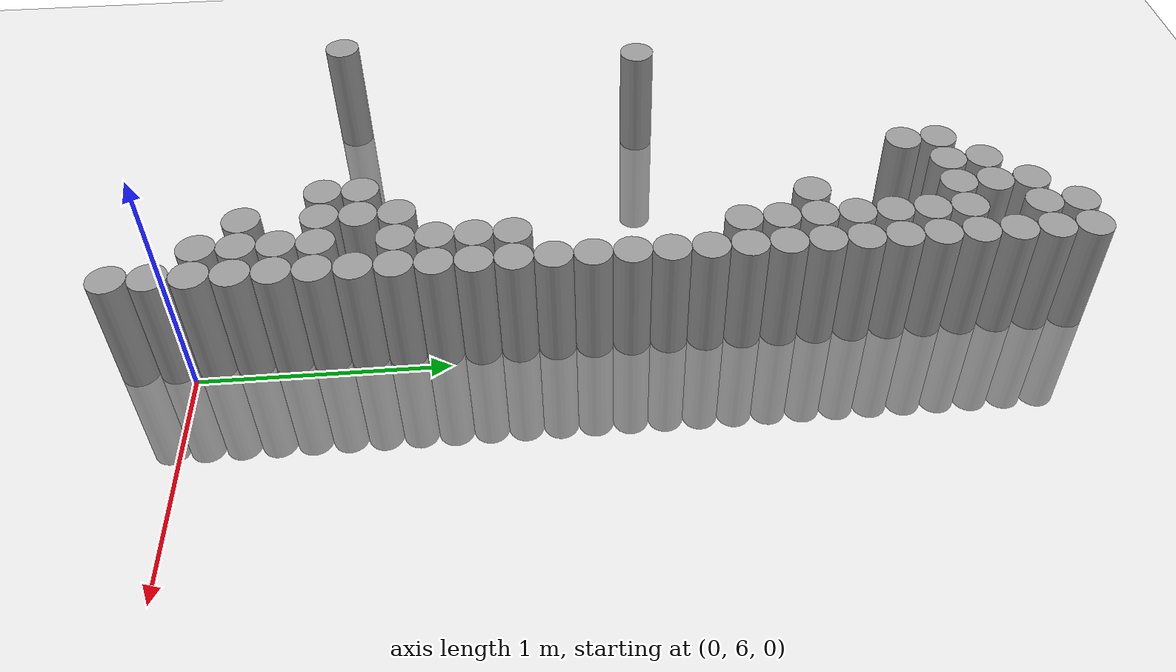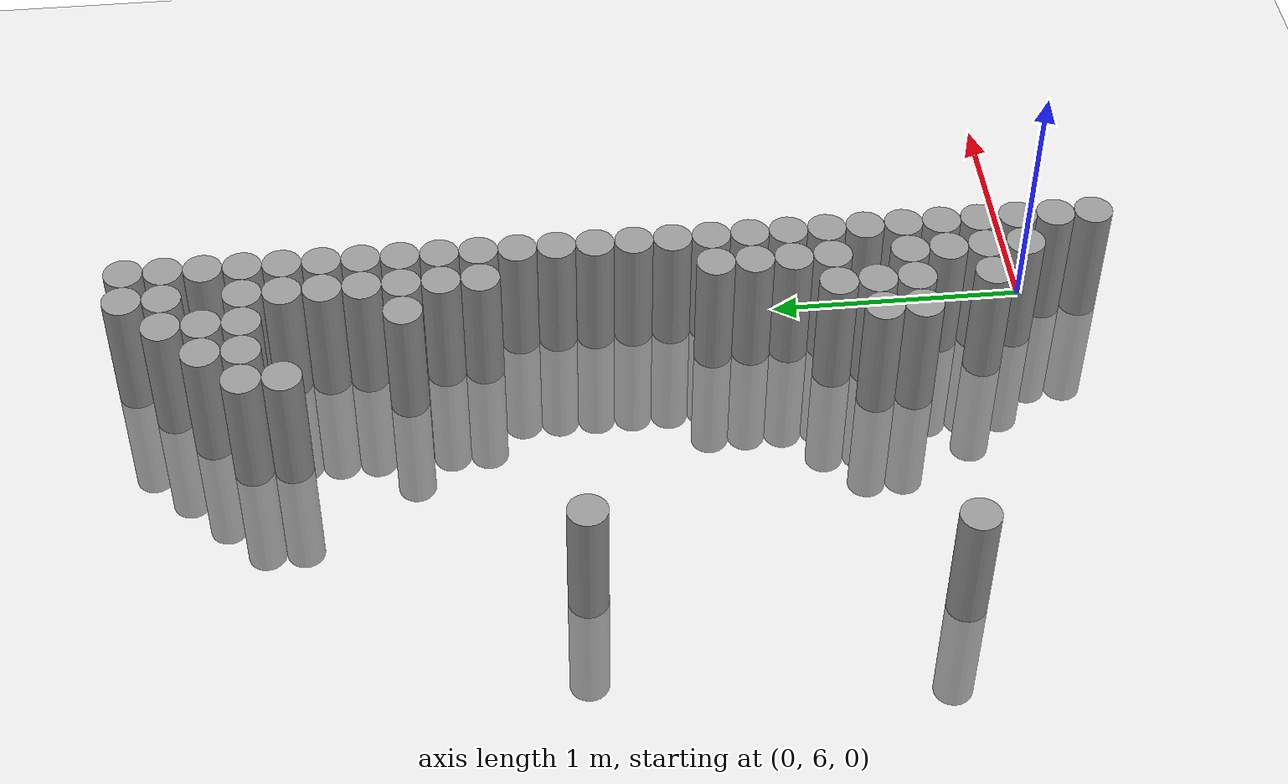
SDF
<sdf version="1.6">
 <world name="default">
  <model name="ground_plane">
   <static>1</static>
   <static>1</static>
   <link name="link">
    <collision name="collision">
     <geometry><plane><normal>0 0 1</normal><size>100 100</size></plane></geometry>
     <surface><friction><ode><mu>100</mu><mu2>50</mu2></ode></friction></surface>
    </collision>
    <visual name="visual">
     <cast_shadows>0</cast_shadows>
     <geometry><plane><normal>0 0 1</normal><size>100 100</size></plane></geometry>
     <material>
      <script><uri>file://media/materials/scripts/gazebo.material</uri><name>Gazebo/Grey</name></script>
     </material>
    </visual>
   </link>
  </model>
  <model name="unit_cylinder_225">
   <static>1</static>
   <pose>-1.575000 6.525000 0.000000 0.000000 0.000000 0.000000</pose>
   <link name="link">
    <inertial>
     <mass>1</mass>
     <inertia><ixx>0.145833</ixx><ixy>0</ixy><ixz>0</ixz><iyy>0.145833</iyy><iyz>0</iyz><izz>0.125</izz></inertia>
    </inertial>
    <collision name="collision">
     <geometry><cylinder><radius>0.075000</radius><length>1</length></cylinder></geometry>
    </collision>
    <visual name="visual">
     <geometry><cylinder><radius>0.075000</radius><length>1</length></cylinder></geometry>
     <material>
      <script><name>Gazebo/Grey</name><uri>file://media/materials/scripts/gazebo.material</uri></script>
     </material>
    </visual>
   </link>
  </model>
  <model name="unit_cylinder_226">
   <static>1</static>
   <pose>-1.425000 7.875000 0.000000 0.000000 0.000000 0.000000</pose>
   <link name="link">
    <inertial>
     <mass>1</mass>
     <inertia><ixx>0.145833</ixx><ixy>0</ixy><ixz>0</ixz><iyy>0.145833</iyy><iyz>0</iyz><izz>0.125</izz></inertia>
    </inertial>
    <collision name="collision">
     <geometry><cylinder><radius>0.075000</radius><length>1</length></cylinder></geometry>
    </collision>
    <visual name="visual">
     <geometry><cylinder><radius>0.075000</radius><length>1</length></cylinder></geometry>
     <material>
      <script><name>Gazebo/Grey</name><uri>file://media/materials/scripts/gazebo.material</uri></script>
     </material>
    </visual>
   </link>
  </model>
  <model name="unit_cylinder_227">
   <static>1</static>
   <pose>-0.675000 8.925000 0.000000 0.000000 0.000000 0.000000</pose>
   <link name="link">
    <inertial>
     <mass>1</mass>
     <inertia><ixx>0.145833</ixx><ixy>0</ixy><ixz>0</ixz><iyy>0.145833</iyy><iyz>0</iyz><izz>0.125</izz></inertia>
    </inertial>
    <collision name="collision">
     <geometry><cylinder><radius>0.075000</radius><length>1</length></cylinder></geometry>
    </collision>
    <visual name="visual">
     <geometry><cylinder><radius>0.075000</radius><length>1</length></cylinder></geometry>
     <material>
      <script><name>Gazebo/Grey</name><uri>file://media/materials/scripts/gazebo.material</uri></script>
     </material>
    </visual>
   </link>
  </model>
  <model name="unit_cylinder_228">
   <static>1</static>
   <pose>-0.675000 9.075000 0.000000 0.000000 0.000000 0.000000</pose>
   <link name="link">
    <inertial>
     <mass>1</mass>
     <inertia><ixx>0.145833</ixx><ixy>0</ixy><ixz>0</ixz><iyy>0.145833</iyy><iyz>0</iyz><izz>0.125</izz></inertia>
    </inertial>
    <collision name="collision">
     <geometry><cylinder><radius>0.075000</radius><length>1</length></cylinder></geometry>
    </collision>
    <visual name="visual">
     <geometry><cylinder><radius>0.075000</radius><length>1</length></cylinder></geometry>
     <material>
      <script><name>Gazebo/Grey</name><uri>file://media/materials/scripts/gazebo.material</uri></script>
     </material>
    </visual>
   </link>
  </model>
  <model name="unit_cylinder_229">
   <static>1</static>
   <pose>-0.525000 6.525000 0.000000 0.000000 0.000000 0.000000</pose>
   <link name="link">
    <inertial>
     <mass>1</mass>
     <inertia><ixx>0.145833</ixx><ixy>0</ixy><ixz>0</ixz><iyy>0.145833</iyy><iyz>0</iyz><izz>0.125</izz></inertia>
    </inertial>
    <collision name="collision">
     <geometry><cylinder><radius>0.075000</radius><length>1</length></cylinder></geometry>
    </collision>
    <visual name="visual">
     <geometry><cylinder><radius>0.075000</radius><length>1</length></cylinder></geometry>
     <material>
      <script><name>Gazebo/Grey</name><uri>file://media/materials/scripts/gazebo.material</uri></script>
     </material>
    </visual>
   </link>
  </model>
  <model name="unit_cylinder_230">
   <static>1</static>
   <pose>-0.525000 6.675000 0.000000 0.000000 0.000000 0.000000</pose>
   <link name="link">
    <inertial>
     <mass>1</mass>
     <inertia><ixx>0.145833</ixx><ixy>0</ixy><ixz>0</ixz><iyy>0.145833</iyy><iyz>0</iyz><izz>0.125</izz></inertia>
    </inertial>
    <collision name="collision">
     <geometry><cylinder><radius>0.075000</radius><length>1</length></cylinder></geometry>
    </collision>
    <visual name="visual">
     <geometry><cylinder><radius>0.075000</radius><length>1</length></cylinder></geometry>
     <material>
      <script><name>Gazebo/Grey</name><uri>file://media/materials/scripts/gazebo.material</uri></script>
     </material>
    </visual>
   </link>
  </model>
  <model name="unit_cylinder_231">
   <static>1</static>
   <pose>-0.525000 9.075000 0.000000 0.000000 0.000000 0.000000</pose>
   <link name="link">
    <inertial>
     <mass>1</mass>
     <inertia><ixx>0.145833</ixx><ixy>0</ixy><ixz>0</ixz><iyy>0.145833</iyy><iyz>0</iyz><izz>0.125</izz></inertia>
    </inertial>
    <collision name="collision">
     <geometry><cylinder><radius>0.075000</radius><length>1</length></cylinder></geometry>
    </collision>
    <visual name="visual">
     <geometry><cylinder><radius>0.075000</radius><length>1</length></cylinder></geometry>
     <material>
      <script><name>Gazebo/Grey</name><uri>file://media/materials/scripts/gazebo.material</uri></script>
     </material>
    </visual>
   </link>
  </model>
  <model name="unit_cylinder_232">
   <static>1</static>
   <pose>-0.525000 9.225000 0.000000 0.000000 0.000000 0.000000</pose>
   <link name="link">
    <inertial>
     <mass>1</mass>
     <inertia><ixx>0.145833</ixx><ixy>0</ixy><ixz>0</ixz><iyy>0.145833</iyy><iyz>0</iyz><izz>0.125</izz></inertia>
    </inertial>
    <collision name="collision">
     <geometry><cylinder><radius>0.075000</radius><length>1</length></cylinder></geometry>
    </collision>
    <visual name="visual">
     <geometry><cylinder><radius>0.075000</radius><length>1</length></cylinder></geometry>
     <material>
      <script><name>Gazebo/Grey</name><uri>file://media/materials/scripts/gazebo.material</uri></script>
     </material>
    </visual>
   </link>
  </model>
  <model name="unit_cylinder_234">
   <static>1</static>
   <pose>-0.375000 6.225000 0.000000 0.000000 0.000000 0.000000</pose>
   <link name="link">
    <inertial>
     <mass>1</mass>
     <inertia><ixx>0.145833</ixx><ixy>0</ixy><ixz>0</ixz><iyy>0.145833</iyy><iyz>0</iyz><izz>0.125</izz></inertia>
    </inertial>
    <collision name="collision">
     <geometry><cylinder><radius>0.075000</radius><length>1</length></cylinder></geometry>
    </collision>
    <visual name="visual">
     <geometry><cylinder><radius>0.075000</radius><length>1</length></cylinder></geometry>
     <material>
      <script><name>Gazebo/Grey</name><uri>file://media/materials/scripts/gazebo.material</uri></script>
     </material>
    </visual>
   </link>
  </model>
  <model name="unit_cylinder_235">
   <static>1</static>
   <pose>-0.375000 6.525000 0.000000 0.000000 0.000000 0.000000</pose>
   <link name="link">
    <inertial>
     <mass>1</mass>
     <inertia><ixx>0.145833</ixx><ixy>0</ixy><ixz>0</ixz><iyy>0.145833</iyy><iyz>0</iyz><izz>0.125</izz></inertia>
    </inertial>
    <collision name="collision">
     <geometry><cylinder><radius>0.075000</radius><length>1</length></cylinder></geometry>
    </collision>
    <visual name="visual">
     <geometry><cylinder><radius>0.075000</radius><length>1</length></cylinder></geometry>
     <material>
      <script><name>Gazebo/Grey</name><uri>file://media/materials/scripts/gazebo.material</uri></script>
     </material>
    </visual>
   </link>
  </model>
  <model name="unit_cylinder_236">
   <static>1</static>
   <pose>-0.375000 6.675000 0.000000 0.000000 0.000000 0.000000</pose>
   <link name="link">
    <inertial>
     <mass>1</mass>
     <inertia><ixx>0.145833</ixx><ixy>0</ixy><ixz>0</ixz><iyy>0.145833</iyy><iyz>0</iyz><izz>0.125</izz></inertia>
    </inertial>
    <collision name="collision">
     <geometry><cylinder><radius>0.075000</radius><length>1</length></cylinder></geometry>
    </collision>
    <visual name="visual">
     <geometry><cylinder><radius>0.075000</radius><length>1</length></cylinder></geometry>
     <material>
      <script><name>Gazebo/Grey</name><uri>file://media/materials/scripts/gazebo.material</uri></script>
     </material>
    </visual>
   </link>
  </model>
  <model name="unit_cylinder_237">
   <static>1</static>
   <pose>-0.375000 6.825000 0.000000 0.000000 0.000000 0.000000</pose>
   <link name="link">
    <inertial>
     <mass>1</mass>
     <inertia><ixx>0.145833</ixx><ixy>0</ixy><ixz>0</ixz><iyy>0.145833</iyy><iyz>0</iyz><izz>0.125</izz></inertia>
    </inertial>
    <collision name="collision">
     <geometry><cylinder><radius>0.075000</radius><length>1</length></cylinder></geometry>
    </collision>
    <visual name="visual">
     <geometry><cylinder><radius>0.075000</radius><length>1</length></cylinder></geometry>
     <material>
      <script><name>Gazebo/Grey</name><uri>file://media/materials/scripts/gazebo.material</uri></script>
     </material>
    </visual>
   </link>
  </model>
  <model name="unit_cylinder_238">
   <static>1</static>
   <pose>-0.375000 8.475000 0.000000 0.000000 0.000000 0.000000</pose>
   <link name="link">
    <inertial>
     <mass>1</mass>
     <inertia><ixx>0.145833</ixx><ixy>0</ixy><ixz>0</ixz><iyy>0.145833</iyy><iyz>0</iyz><izz>0.125</izz></inertia>
    </inertial>
    <collision name="collision">
     <geometry><cylinder><radius>0.075000</radius><length>1</length></cylinder></geometry>
    </collision>
    <visual name="visual">
     <geometry><cylinder><radius>0.075000</radius><length>1</length></cylinder></geometry>
     <material>
      <script><name>Gazebo/Grey</name><uri>file://media/materials/scripts/gazebo.material</uri></script>
     </material>
    </visual>
   </link>
  </model>
  <model name="unit_cylinder_239">
   <static>1</static>
   <pose>-0.375000 9.075000 0.000000 0.000000 0.000000 0.000000</pose>
   <link name="link">
    <inertial>
     <mass>1</mass>
     <inertia><ixx>0.145833</ixx><ixy>0</ixy><ixz>0</ixz><iyy>0.145833</iyy><iyz>0</iyz><izz>0.125</izz></inertia>
    </inertial>
    <collision name="collision">
     <geometry><cylinder><radius>0.075000</radius><length>1</length></cylinder></geometry>
    </collision>
    <visual name="visual">
     <geometry><cylinder><radius>0.075000</radius><length>1</length></cylinder></geometry>
     <material>
      <script><name>Gazebo/Grey</name><uri>file://media/materials/scripts/gazebo.material</uri></script>
     </material>
    </visual>
   </link>
  </model>
  <model name="unit_cylinder_240">
   <static>1</static>
   <pose>-0.375000 9.225000 0.000000 0.000000 0.000000 0.000000</pose>
   <link name="link">
    <inertial>
     <mass>1</mass>
     <inertia><ixx>0.145833</ixx><ixy>0</ixy><ixz>0</ixz><iyy>0.145833</iyy><iyz>0</iyz><izz>0.125</izz></inertia>
    </inertial>
    <collision name="collision">
     <geometry><cylinder><radius>0.075000</radius><length>1</length></cylinder></geometry>
    </collision>
    <visual name="visual">
     <geometry><cylinder><radius>0.075000</radius><length>1</length></cylinder></geometry>
     <material>
      <script><name>Gazebo/Grey</name><uri>file://media/materials/scripts/gazebo.material</uri></script>
     </material>
    </visual>
   </link>
  </model>
  <model name="unit_cylinder_241">
   <static>1</static>
   <pose>-0.375000 9.375000 0.000000 0.000000 0.000000 0.000000</pose>
   <link name="link">
    <inertial>
     <mass>1</mass>
     <inertia><ixx>0.145833</ixx><ixy>0</ixy><ixz>0</ixz><iyy>0.145833</iyy><iyz>0</iyz><izz>0.125</izz></inertia>
    </inertial>
    <collision name="collision">
     <geometry><cylinder><radius>0.075000</radius><length>1</length></cylinder></geometry>
    </collision>
    <visual name="visual">
     <geometry><cylinder><radius>0.075000</radius><length>1</length></cylinder></geometry>
     <material>
      <script><name>Gazebo/Grey</name><uri>file://media/materials/scripts/gazebo.material</uri></script>
     </material>
    </visual>
   </link>
  </model>
  <model name="unit_cylinder_245">
   <static>1</static>
   <pose>-0.225000 6.075000 0.000000 0.000000 0.000000 0.000000</pose>
   <link name="link">
    <inertial>
     <mass>1</mass>
     <inertia><ixx>0.145833</ixx><ixy>0</ixy><ixz>0</ixz><iyy>0.145833</iyy><iyz>0</iyz><izz>0.125</izz></inertia>
    </inertial>
    <collision name="collision">
     <geometry><cylinder><radius>0.075000</radius><length>1</length></cylinder></geometry>
    </collision>
    <visual name="visual">
     <geometry><cylinder><radius>0.075000</radius><length>1</length></cylinder></geometry>
     <material>
      <script><name>Gazebo/Grey</name><uri>file://media/materials/scripts/gazebo.material</uri></script>
     </material>
    </visual>
   </link>
  </model>
  <model name="unit_cylinder_246">
   <static>1</static>
   <pose>-0.225000 6.225000 0.000000 0.000000 0.000000 0.000000</pose>
   <link name="link">
    <inertial>
     <mass>1</mass>
     <inertia><ixx>0.145833</ixx><ixy>0</ixy><ixz>0</ixz><iyy>0.145833</iyy><iyz>0</iyz><izz>0.125</izz></inertia>
    </inertial>
    <collision name="collision">
     <geometry><cylinder><radius>0.075000</radius><length>1</length></cylinder></geometry>
    </collision>
    <visual name="visual">
     <geometry><cylinder><radius>0.075000</radius><length>1</length></cylinder></geometry>
     <material>
      <script><name>Gazebo/Grey</name><uri>file://media/materials/scripts/gazebo.material</uri></script>
     </material>
    </visual>
   </link>
  </model>
  <model name="unit_cylinder_247">
   <static>1</static>
   <pose>-0.225000 6.375000 0.000000 0.000000 0.000000 0.000000</pose>
   <link name="link">
    <inertial>
     <mass>1</mass>
     <inertia><ixx>0.145833</ixx><ixy>0</ixy><ixz>0</ixz><iyy>0.145833</iyy><iyz>0</iyz><izz>0.125</izz></inertia>
    </inertial>
    <collision name="collision">
     <geometry><cylinder><radius>0.075000</radius><length>1</length></cylinder></geometry>
    </collision>
    <visual name="visual">
     <geometry><cylinder><radius>0.075000</radius><length>1</length></cylinder></geometry>
     <material>
      <script><name>Gazebo/Grey</name><uri>file://media/materials/scripts/gazebo.material</uri></script>
     </material>
    </visual>
   </link>
  </model>
  <model name="unit_cylinder_248">
   <static>1</static>
   <pose>-0.225000 6.525000 0.000000 0.000000 0.000000 0.000000</pose>
   <link name="link">
    <inertial>
     <mass>1</mass>
     <inertia><ixx>0.145833</ixx><ixy>0</ixy><ixz>0</ixz><iyy>0.145833</iyy><iyz>0</iyz><izz>0.125</izz></inertia>
    </inertial>
    <collision name="collision">
     <geometry><cylinder><radius>0.075000</radius><length>1</length></cylinder></geometry>
    </collision>
    <visual name="visual">
     <geometry><cylinder><radius>0.075000</radius><length>1</length></cylinder></geometry>
     <material>
      <script><name>Gazebo/Grey</name><uri>file://media/materials/scripts/gazebo.material</uri></script>
     </material>
    </visual>
   </link>
  </model>
  <model name="unit_cylinder_249">
   <static>1</static>
   <pose>-0.225000 6.825000 0.000000 0.000000 0.000000 0.000000</pose>
   <link name="link">
    <inertial>
     <mass>1</mass>
     <inertia><ixx>0.145833</ixx><ixy>0</ixy><ixz>0</ixz><iyy>0.145833</iyy><iyz>0</iyz><izz>0.125</izz></inertia>
    </inertial>
    <collision name="collision">
     <geometry><cylinder><radius>0.075000</radius><length>1</length></cylinder></geometry>
    </collision>
    <visual name="visual">
     <geometry><cylinder><radius>0.075000</radius><length>1</length></cylinder></geometry>
     <material>
      <script><name>Gazebo/Grey</name><uri>file://media/materials/scripts/gazebo.material</uri></script>
     </material>
    </visual>
   </link>
  </model>
  <model name="unit_cylinder_250">
   <static>1</static>
   <pose>-0.225000 6.975000 0.000000 0.000000 0.000000 0.000000</pose>
   <link name="link">
    <inertial>
     <mass>1</mass>
     <inertia><ixx>0.145833</ixx><ixy>0</ixy><ixz>0</ixz><iyy>0.145833</iyy><iyz>0</iyz><izz>0.125</izz></inertia>
    </inertial>
    <collision name="collision">
     <geometry><cylinder><radius>0.075000</radius><length>1</length></cylinder></geometry>
    </collision>
    <visual name="visual">
     <geometry><cylinder><radius>0.075000</radius><length>1</length></cylinder></geometry>
     <material>
      <script><name>Gazebo/Grey</name><uri>file://media/materials/scripts/gazebo.material</uri></script>
     </material>
    </visual>
   </link>
  </model>
  <model name="unit_cylinder_251">
   <static>1</static>
   <pose>-0.225000 7.125000 0.000000 0.000000 0.000000 0.000000</pose>
   <link name="link">
    <inertial>
     <mass>1</mass>
     <inertia><ixx>0.145833</ixx><ixy>0</ixy><ixz>0</ixz><iyy>0.145833</iyy><iyz>0</iyz><izz>0.125</izz></inertia>
    </inertial>
    <collision name="collision">
     <geometry><cylinder><radius>0.075000</radius><length>1</length></cylinder></geometry>
    </collision>
    <visual name="visual">
     <geometry><cylinder><radius>0.075000</radius><length>1</length></cylinder></geometry>
     <material>
      <script><name>Gazebo/Grey</name><uri>file://media/materials/scripts/gazebo.material</uri></script>
     </material>
    </visual>
   </link>
  </model>
  <model name="unit_cylinder_252">
   <static>1</static>
   <pose>-0.225000 7.275000 0.000000 0.000000 0.000000 0.000000</pose>
   <link name="link">
    <inertial>
     <mass>1</mass>
     <inertia><ixx>0.145833</ixx><ixy>0</ixy><ixz>0</ixz><iyy>0.145833</iyy><iyz>0</iyz><izz>0.125</izz></inertia>
    </inertial>
    <collision name="collision">
     <geometry><cylinder><radius>0.075000</radius><length>1</length></cylinder></geometry>
    </collision>
    <visual name="visual">
     <geometry><cylinder><radius>0.075000</radius><length>1</length></cylinder></geometry>
     <material>
      <script><name>Gazebo/Grey</name><uri>file://media/materials/scripts/gazebo.material</uri></script>
     </material>
    </visual>
   </link>
  </model>
  <model name="unit_cylinder_253">
   <static>1</static>
   <pose>-0.225000 8.175000 0.000000 0.000000 0.000000 0.000000</pose>
   <link name="link">
    <inertial>
     <mass>1</mass>
     <inertia><ixx>0.145833</ixx><ixy>0</ixy><ixz>0</ixz><iyy>0.145833</iyy><iyz>0</iyz><izz>0.125</izz></inertia>
    </inertial>
    <collision name="collision">
     <geometry><cylinder><radius>0.075000</radius><length>1</length></cylinder></geometry>
    </collision>
    <visual name="visual">
     <geometry><cylinder><radius>0.075000</radius><length>1</length></cylinder></geometry>
     <material>
      <script><name>Gazebo/Grey</name><uri>file://media/materials/scripts/gazebo.material</uri></script>
     </material>
    </visual>
   </link>
  </model>
  <model name="unit_cylinder_254">
   <static>1</static>
   <pose>-0.225000 8.325000 0.000000 0.000000 0.000000 0.000000</pose>
   <link name="link">
    <inertial>
     <mass>1</mass>
     <inertia><ixx>0.145833</ixx><ixy>0</ixy><ixz>0</ixz><iyy>0.145833</iyy><iyz>0</iyz><izz>0.125</izz></inertia>
    </inertial>
    <collision name="collision">
     <geometry><cylinder><radius>0.075000</radius><length>1</length></cylinder></geometry>
    </collision>
    <visual name="visual">
     <geometry><cylinder><radius>0.075000</radius><length>1</length></cylinder></geometry>
     <material>
      <script><name>Gazebo/Grey</name><uri>file://media/materials/scripts/gazebo.material</uri></script>
     </material>
    </visual>
   </link>
  </model>
  <model name="unit_cylinder_255">
   <static>1</static>
   <pose>-0.225000 8.475000 0.000000 0.000000 0.000000 0.000000</pose>
   <link name="link">
    <inertial>
     <mass>1</mass>
     <inertia><ixx>0.145833</ixx><ixy>0</ixy><ixz>0</ixz><iyy>0.145833</iyy><iyz>0</iyz><izz>0.125</izz></inertia>
    </inertial>
    <collision name="collision">
     <geometry><cylinder><radius>0.075000</radius><length>1</length></cylinder></geometry>
    </collision>
    <visual name="visual">
     <geometry><cylinder><radius>0.075000</radius><length>1</length></cylinder></geometry>
     <material>
      <script><name>Gazebo/Grey</name><uri>file://media/materials/scripts/gazebo.material</uri></script>
     </material>
    </visual>
   </link>
  </model>
  <model name="unit_cylinder_256">
   <static>1</static>
   <pose>-0.225000 8.625000 0.000000 0.000000 0.000000 0.000000</pose>
   <link name="link">
    <inertial>
     <mass>1</mass>
     <inertia><ixx>0.145833</ixx><ixy>0</ixy><ixz>0</ixz><iyy>0.145833</iyy><iyz>0</iyz><izz>0.125</izz></inertia>
    </inertial>
    <collision name="collision">
     <geometry><cylinder><radius>0.075000</radius><length>1</length></cylinder></geometry>
    </collision>
    <visual name="visual">
     <geometry><cylinder><radius>0.075000</radius><length>1</length></cylinder></geometry>
     <material>
      <script><name>Gazebo/Grey</name><uri>file://media/materials/scripts/gazebo.material</uri></script>
     </material>
    </visual>
   </link>
  </model>
  <model name="unit_cylinder_257">
   <static>1</static>
   <pose>-0.225000 8.775000 0.000000 0.000000 0.000000 0.000000</pose>
   <link name="link">
    <inertial>
     <mass>1</mass>
     <inertia><ixx>0.145833</ixx><ixy>0</ixy><ixz>0</ixz><iyy>0.145833</iyy><iyz>0</iyz><izz>0.125</izz></inertia>
    </inertial>
    <collision name="collision">
     <geometry><cylinder><radius>0.075000</radius><length>1</length></cylinder></geometry>
    </collision>
    <visual name="visual">
     <geometry><cylinder><radius>0.075000</radius><length>1</length></cylinder></geometry>
     <material>
      <script><name>Gazebo/Grey</name><uri>file://media/materials/scripts/gazebo.material</uri></script>
     </material>
    </visual>
   </link>
  </model>
  <model name="unit_cylinder_258">
   <static>1</static>
   <pose>-0.225000 8.925000 0.000000 0.000000 0.000000 0.000000</pose>
   <link name="link">
    <inertial>
     <mass>1</mass>
     <inertia><ixx>0.145833</ixx><ixy>0</ixy><ixz>0</ixz><iyy>0.145833</iyy><iyz>0</iyz><izz>0.125</izz></inertia>
    </inertial>
    <collision name="collision">
     <geometry><cylinder><radius>0.075000</radius><length>1</length></cylinder></geometry>
    </collision>
    <visual name="visual">
     <geometry><cylinder><radius>0.075000</radius><length>1</length></cylinder></geometry>
     <material>
      <script><name>Gazebo/Grey</name><uri>file://media/materials/scripts/gazebo.material</uri></script>
     </material>
    </visual>
   </link>
  </model>
  <model name="unit_cylinder_259">
   <static>1</static>
   <pose>-0.225000 9.075000 0.000000 0.000000 0.000000 0.000000</pose>
   <link name="link">
    <inertial>
     <mass>1</mass>
     <inertia><ixx>0.145833</ixx><ixy>0</ixy><ixz>0</ixz><iyy>0.145833</iyy><iyz>0</iyz><izz>0.125</izz></inertia>
    </inertial>
    <collision name="collision">
     <geometry><cylinder><radius>0.075000</radius><length>1</length></cylinder></geometry>
    </collision>
    <visual name="visual">
     <geometry><cylinder><radius>0.075000</radius><length>1</length></cylinder></geometry>
     <material>
      <script><name>Gazebo/Grey</name><uri>file://media/materials/scripts/gazebo.material</uri></script>
     </material>
    </visual>
   </link>
  </model>
  <model name="unit_cylinder_260">
   <static>1</static>
   <pose>-0.225000 9.375000 0.000000 0.000000 0.000000 0.000000</pose>
   <link name="link">
    <inertial>
     <mass>1</mass>
     <inertia><ixx>0.145833</ixx><ixy>0</ixy><ixz>0</ixz><iyy>0.145833</iyy><iyz>0</iyz><izz>0.125</izz></inertia>
    </inertial>
    <collision name="collision">
     <geometry><cylinder><radius>0.075000</radius><length>1</length></cylinder></geometry>
    </collision>
    <visual name="visual">
     <geometry><cylinder><radius>0.075000</radius><length>1</length></cylinder></geometry>
     <material>
      <script><name>Gazebo/Grey</name><uri>file://media/materials/scripts/gazebo.material</uri></script>
     </material>
    </visual>
   </link>
  </model>
  <model name="unit_cylinder_261">
   <static>1</static>
   <pose>-0.225000 9.525000 0.000000 0.000000 0.000000 0.000000</pose>
   <link name="link">
    <inertial>
     <mass>1</mass>
     <inertia><ixx>0.145833</ixx><ixy>0</ixy><ixz>0</ixz><iyy>0.145833</iyy><iyz>0</iyz><izz>0.125</izz></inertia>
    </inertial>
    <collision name="collision">
     <geometry><cylinder><radius>0.075000</radius><length>1</length></cylinder></geometry>
    </collision>
    <visual name="visual">
     <geometry><cylinder><radius>0.075000</radius><length>1</length></cylinder></geometry>
     <material>
      <script><name>Gazebo/Grey</name><uri>file://media/materials/scripts/gazebo.material</uri></script>
     </material>
    </visual>
   </link>
  </model>
  <model name="unit_cylinder_266">
   <static>1</static>
   <pose>-0.075000 5.775000 0.000000 0.000000 0.000000 0.000000</pose>
   <link name="link">
    <inertial>
     <mass>1</mass>
     <inertia><ixx>0.145833</ixx><ixy>0</ixy><ixz>0</ixz><iyy>0.145833</iyy><iyz>0</iyz><izz>0.125</izz></inertia>
    </inertial>
    <collision name="collision">
     <geometry><cylinder><radius>0.075000</radius><length>1</length></cylinder></geometry>
    </collision>
    <visual name="visual">
     <geometry><cylinder><radius>0.075000</radius><length>1</length></cylinder></geometry>
     <material>
      <script><name>Gazebo/Grey</name><uri>file://media/materials/scripts/gazebo.material</uri></script>
     </material>
    </visual>
   </link>
  </model>
  <model name="unit_cylinder_267">
   <static>1</static>
   <pose>-0.075000 5.925000 0.000000 0.000000 0.000000 0.000000</pose>
   <link name="link">
    <inertial>
     <mass>1</mass>
     <inertia><ixx>0.145833</ixx><ixy>0</ixy><ixz>0</ixz><iyy>0.145833</iyy><iyz>0</iyz><izz>0.125</izz></inertia>
    </inertial>
    <collision name="collision">
     <geometry><cylinder><radius>0.075000</radius><length>1</length></cylinder></geometry>
    </collision>
    <visual name="visual">
     <geometry><cylinder><radius>0.075000</radius><length>1</length></cylinder></geometry>
     <material>
      <script><name>Gazebo/Grey</name><uri>file://media/materials/scripts/gazebo.material</uri></script>
     </material>
    </visual>
   </link>
  </model>
  <model name="unit_cylinder_268">
   <static>1</static>
   <pose>-0.075000 6.075000 0.000000 0.000000 0.000000 0.000000</pose>
   <link name="link">
    <inertial>
     <mass>1</mass>
     <inertia><ixx>0.145833</ixx><ixy>0</ixy><ixz>0</ixz><iyy>0.145833</iyy><iyz>0</iyz><izz>0.125</izz></inertia>
    </inertial>
    <collision name="collision">
     <geometry><cylinder><radius>0.075000</radius><length>1</length></cylinder></geometry>
    </collision>
    <visual name="visual">
     <geometry><cylinder><radius>0.075000</radius><length>1</length></cylinder></geometry>
     <material>
      <script><name>Gazebo/Grey</name><uri>file://media/materials/scripts/gazebo.material</uri></script>
     </material>
    </visual>
   </link>
  </model>
  <model name="unit_cylinder_269">
   <static>1</static>
   <pose>-0.075000 6.225000 0.000000 0.000000 0.000000 0.000000</pose>
   <link name="link">
    <inertial>
     <mass>1</mass>
     <inertia><ixx>0.145833</ixx><ixy>0</ixy><ixz>0</ixz><iyy>0.145833</iyy><iyz>0</iyz><izz>0.125</izz></inertia>
    </inertial>
    <collision name="collision">
     <geometry><cylinder><radius>0.075000</radius><length>1</length></cylinder></geometry>
    </collision>
    <visual name="visual">
     <geometry><cylinder><radius>0.075000</radius><length>1</length></cylinder></geometry>
     <material>
      <script><name>Gazebo/Grey</name><uri>file://media/materials/scripts/gazebo.material</uri></script>
     </material>
    </visual>
   </link>
  </model>
  <model name="unit_cylinder_270">
   <static>1</static>
   <pose>-0.075000 6.375000 0.000000 0.000000 0.000000 0.000000</pose>
   <link name="link">
    <inertial>
     <mass>1</mass>
     <inertia><ixx>0.145833</ixx><ixy>0</ixy><ixz>0</ixz><iyy>0.145833</iyy><iyz>0</iyz><izz>0.125</izz></inertia>
    </inertial>
    <collision name="collision">
     <geometry><cylinder><radius>0.075000</radius><length>1</length></cylinder></geometry>
    </collision>
    <visual name="visual">
     <geometry><cylinder><radius>0.075000</radius><length>1</length></cylinder></geometry>
     <material>
      <script><name>Gazebo/Grey</name><uri>file://media/materials/scripts/gazebo.material</uri></script>
     </material>
    </visual>
   </link>
  </model>
  <model name="unit_cylinder_271">
   <static>1</static>
   <pose>-0.075000 6.525000 0.000000 0.000000 0.000000 0.000000</pose>
   <link name="link">
    <inertial>
     <mass>1</mass>
     <inertia><ixx>0.145833</ixx><ixy>0</ixy><ixz>0</ixz><iyy>0.145833</iyy><iyz>0</iyz><izz>0.125</izz></inertia>
    </inertial>
    <collision name="collision">
     <geometry><cylinder><radius>0.075000</radius><length>1</length></cylinder></geometry>
    </collision>
    <visual name="visual">
     <geometry><cylinder><radius>0.075000</radius><length>1</length></cylinder></geometry>
     <material>
      <script><name>Gazebo/Grey</name><uri>file://media/materials/scripts/gazebo.material</uri></script>
     </material>
    </visual>
   </link>
  </model>
  <model name="unit_cylinder_272">
   <static>1</static>
   <pose>-0.075000 6.675000 0.000000 0.000000 0.000000 0.000000</pose>
   <link name="link">
    <inertial>
     <mass>1</mass>
     <inertia><ixx>0.145833</ixx><ixy>0</ixy><ixz>0</ixz><iyy>0.145833</iyy><iyz>0</iyz><izz>0.125</izz></inertia>
    </inertial>
    <collision name="collision">
     <geometry><cylinder><radius>0.075000</radius><length>1</length></cylinder></geometry>
    </collision>
    <visual name="visual">
     <geometry><cylinder><radius>0.075000</radius><length>1</length></cylinder></geometry>
     <material>
      <script><name>Gazebo/Grey</name><uri>file://media/materials/scripts/gazebo.material</uri></script>
     </material>
    </visual>
   </link>
  </model>
  <model name="unit_cylinder_273">
   <static>1</static>
   <pose>-0.075000 6.825000 0.000000 0.000000 0.000000 0.000000</pose>
   <link name="link">
    <inertial>
     <mass>1</mass>
     <inertia><ixx>0.145833</ixx><ixy>0</ixy><ixz>0</ixz><iyy>0.145833</iyy><iyz>0</iyz><izz>0.125</izz></inertia>
    </inertial>
    <collision name="collision">
     <geometry><cylinder><radius>0.075000</radius><length>1</length></cylinder></geometry>
    </collision>
    <visual name="visual">
     <geometry><cylinder><radius>0.075000</radius><length>1</length></cylinder></geometry>
     <material>
      <script><name>Gazebo/Grey</name><uri>file://media/materials/scripts/gazebo.material</uri></script>
     </material>
    </visual>
   </link>
  </model>
  <model name="unit_cylinder_274">
   <static>1</static>
   <pose>-0.075000 6.975000 0.000000 0.000000 0.000000 0.000000</pose>
   <link name="link">
    <inertial>
     <mass>1</mass>
     <inertia><ixx>0.145833</ixx><ixy>0</ixy><ixz>0</ixz><iyy>0.145833</iyy><iyz>0</iyz><izz>0.125</izz></inertia>
    </inertial>
    <collision name="collision">
     <geometry><cylinder><radius>0.075000</radius><length>1</length></cylinder></geometry>
    </collision>
    <visual name="visual">
     <geometry><cylinder><radius>0.075000</radius><length>1</length></cylinder></geometry>
     <material>
      <script><name>Gazebo/Grey</name><uri>file://media/materials/scripts/gazebo.material</uri></script>
     </material>
    </visual>
   </link>
  </model>
  <model name="unit_cylinder_275">
   <static>1</static>
   <pose>-0.075000 7.125000 0.000000 0.000000 0.000000 0.000000</pose>
   <link name="link">
    <inertial>
     <mass>1</mass>
     <inertia><ixx>0.145833</ixx><ixy>0</ixy><ixz>0</ixz><iyy>0.145833</iyy><iyz>0</iyz><izz>0.125</izz></inertia>
    </inertial>
    <collision name="collision">
     <geometry><cylinder><radius>0.075000</radius><length>1</length></cylinder></geometry>
    </collision>
    <visual name="visual">
     <geometry><cylinder><radius>0.075000</radius><length>1</length></cylinder></geometry>
     <material>
      <script><name>Gazebo/Grey</name><uri>file://media/materials/scripts/gazebo.material</uri></script>
     </material>
    </visual>
   </link>
  </model>
  <model name="unit_cylinder_276">
   <static>1</static>
   <pose>-0.075000 7.275000 0.000000 0.000000 0.000000 0.000000</pose>
   <link name="link">
    <inertial>
     <mass>1</mass>
     <inertia><ixx>0.145833</ixx><ixy>0</ixy><ixz>0</ixz><iyy>0.145833</iyy><iyz>0</iyz><izz>0.125</izz></inertia>
    </inertial>
    <collision name="collision">
     <geometry><cylinder><radius>0.075000</radius><length>1</length></cylinder></geometry>
    </collision>
    <visual name="visual">
     <geometry><cylinder><radius>0.075000</radius><length>1</length></cylinder></geometry>
     <material>
      <script><name>Gazebo/Grey</name><uri>file://media/materials/scripts/gazebo.material</uri></script>
     </material>
    </visual>
   </link>
  </model>
  <model name="unit_cylinder_277">
   <static>1</static>
   <pose>-0.075000 7.425000 0.000000 0.000000 0.000000 0.000000</pose>
   <link name="link">
    <inertial>
     <mass>1</mass>
     <inertia><ixx>0.145833</ixx><ixy>0</ixy><ixz>0</ixz><iyy>0.145833</iyy><iyz>0</iyz><izz>0.125</izz></inertia>
    </inertial>
    <collision name="collision">
     <geometry><cylinder><radius>0.075000</radius><length>1</length></cylinder></geometry>
    </collision>
    <visual name="visual">
     <geometry><cylinder><radius>0.075000</radius><length>1</length></cylinder></geometry>
     <material>
      <script><name>Gazebo/Grey</name><uri>file://media/materials/scripts/gazebo.material</uri></script>
     </material>
    </visual>
   </link>
  </model>
  <model name="unit_cylinder_278">
   <static>1</static>
   <pose>-0.075000 7.575000 0.000000 0.000000 0.000000 0.000000</pose>
   <link name="link">
    <inertial>
     <mass>1</mass>
     <inertia><ixx>0.145833</ixx><ixy>0</ixy><ixz>0</ixz><iyy>0.145833</iyy><iyz>0</iyz><izz>0.125</izz></inertia>
    </inertial>
    <collision name="collision">
     <geometry><cylinder><radius>0.075000</radius><length>1</length></cylinder></geometry>
    </collision>
    <visual name="visual">
     <geometry><cylinder><radius>0.075000</radius><length>1</length></cylinder></geometry>
     <material>
      <script><name>Gazebo/Grey</name><uri>file://media/materials/scripts/gazebo.material</uri></script>
     </material>
    </visual>
   </link>
  </model>
  <model name="unit_cylinder_279">
   <static>1</static>
   <pose>-0.075000 7.725000 0.000000 0.000000 0.000000 0.000000</pose>
   <link name="link">
    <inertial>
     <mass>1</mass>
     <inertia><ixx>0.145833</ixx><ixy>0</ixy><ixz>0</ixz><iyy>0.145833</iyy><iyz>0</iyz><izz>0.125</izz></inertia>
    </inertial>
    <collision name="collision">
     <geometry><cylinder><radius>0.075000</radius><length>1</length></cylinder></geometry>
    </collision>
    <visual name="visual">
     <geometry><cylinder><radius>0.075000</radius><length>1</length></cylinder></geometry>
     <material>
      <script><name>Gazebo/Grey</name><uri>file://media/materials/scripts/gazebo.material</uri></script>
     </material>
    </visual>
   </link>
  </model>
  <model name="unit_cylinder_280">
   <static>1</static>
   <pose>-0.075000 7.875000 0.000000 0.000000 0.000000 0.000000</pose>
   <link name="link">
    <inertial>
     <mass>1</mass>
     <inertia><ixx>0.145833</ixx><ixy>0</ixy><ixz>0</ixz><iyy>0.145833</iyy><iyz>0</iyz><izz>0.125</izz></inertia>
    </inertial>
    <collision name="collision">
     <geometry><cylinder><radius>0.075000</radius><length>1</length></cylinder></geometry>
    </collision>
    <visual name="visual">
     <geometry><cylinder><radius>0.075000</radius><length>1</length></cylinder></geometry>
     <material>
      <script><name>Gazebo/Grey</name><uri>file://media/materials/scripts/gazebo.material</uri></script>
     </material>
    </visual>
   </link>
  </model>
  <model name="unit_cylinder_281">
   <static>1</static>
   <pose>-0.075000 8.025000 0.000000 0.000000 0.000000 0.000000</pose>
   <link name="link">
    <inertial>
     <mass>1</mass>
     <inertia><ixx>0.145833</ixx><ixy>0</ixy><ixz>0</ixz><iyy>0.145833</iyy><iyz>0</iyz><izz>0.125</izz></inertia>
    </inertial>
    <collision name="collision">
     <geometry><cylinder><radius>0.075000</radius><length>1</length></cylinder></geometry>
    </collision>
    <visual name="visual">
     <geometry><cylinder><radius>0.075000</radius><length>1</length></cylinder></geometry>
     <material>
      <script><name>Gazebo/Grey</name><uri>file://media/materials/scripts/gazebo.material</uri></script>
     </material>
    </visual>
   </link>
  </model>
  <model name="unit_cylinder_282">
   <static>1</static>
   <pose>-0.075000 8.175000 0.000000 0.000000 0.000000 0.000000</pose>
   <link name="link">
    <inertial>
     <mass>1</mass>
     <inertia><ixx>0.145833</ixx><ixy>0</ixy><ixz>0</ixz><iyy>0.145833</iyy><iyz>0</iyz><izz>0.125</izz></inertia>
    </inertial>
    <collision name="collision">
     <geometry><cylinder><radius>0.075000</radius><length>1</length></cylinder></geometry>
    </collision>
    <visual name="visual">
     <geometry><cylinder><radius>0.075000</radius><length>1</length></cylinder></geometry>
     <material>
      <script><name>Gazebo/Grey</name><uri>file://media/materials/scripts/gazebo.material</uri></script>
     </material>
    </visual>
   </link>
  </model>
  <model name="unit_cylinder_283">
   <static>1</static>
   <pose>-0.075000 8.325000 0.000000 0.000000 0.000000 0.000000</pose>
   <link name="link">
    <inertial>
     <mass>1</mass>
     <inertia><ixx>0.145833</ixx><ixy>0</ixy><ixz>0</ixz><iyy>0.145833</iyy><iyz>0</iyz><izz>0.125</izz></inertia>
    </inertial>
    <collision name="collision">
     <geometry><cylinder><radius>0.075000</radius><length>1</length></cylinder></geometry>
    </collision>
    <visual name="visual">
     <geometry><cylinder><radius>0.075000</radius><length>1</length></cylinder></geometry>
     <material>
      <script><name>Gazebo/Grey</name><uri>file://media/materials/scripts/gazebo.material</uri></script>
     </material>
    </visual>
   </link>
  </model>
  <model name="unit_cylinder_284">
   <static>1</static>
   <pose>-0.075000 8.475000 0.000000 0.000000 0.000000 0.000000</pose>
   <link name="link">
    <inertial>
     <mass>1</mass>
     <inertia><ixx>0.145833</ixx><ixy>0</ixy><ixz>0</ixz><iyy>0.145833</iyy><iyz>0</iyz><izz>0.125</izz></inertia>
    </inertial>
    <collision name="collision">
     <geometry><cylinder><radius>0.075000</radius><length>1</length></cylinder></geometry>
    </collision>
    <visual name="visual">
     <geometry><cylinder><radius>0.075000</radius><length>1</length></cylinder></geometry>
     <material>
      <script><name>Gazebo/Grey</name><uri>file://media/materials/scripts/gazebo.material</uri></script>
     </material>
    </visual>
   </link>
  </model>
  <model name="unit_cylinder_285">
   <static>1</static>
   <pose>-0.075000 8.625000 0.000000 0.000000 0.000000 0.000000</pose>
   <link name="link">
    <inertial>
     <mass>1</mass>
     <inertia><ixx>0.145833</ixx><ixy>0</ixy><ixz>0</ixz><iyy>0.145833</iyy><iyz>0</iyz><izz>0.125</izz></inertia>
    </inertial>
    <collision name="collision">
     <geometry><cylinder><radius>0.075000</radius><length>1</length></cylinder></geometry>
    </collision>
    <visual name="visual">
     <geometry><cylinder><radius>0.075000</radius><length>1</length></cylinder></geometry>
     <material>
      <script><name>Gazebo/Grey</name><uri>file://media/materials/scripts/gazebo.material</uri></script>
     </material>
    </visual>
   </link>
  </model>
  <model name="unit_cylinder_286">
   <static>1</static>
   <pose>-0.075000 8.775000 0.000000 0.000000 0.000000 0.000000</pose>
   <link name="link">
    <inertial>
     <mass>1</mass>
     <inertia><ixx>0.145833</ixx><ixy>0</ixy><ixz>0</ixz><iyy>0.145833</iyy><iyz>0</iyz><izz>0.125</izz></inertia>
    </inertial>
    <collision name="collision">
     <geometry><cylinder><radius>0.075000</radius><length>1</length></cylinder></geometry>
    </collision>
    <visual name="visual">
     <geometry><cylinder><radius>0.075000</radius><length>1</length></cylinder></geometry>
     <material>
      <script><name>Gazebo/Grey</name><uri>file://media/materials/scripts/gazebo.material</uri></script>
     </material>
    </visual>
   </link>
  </model>
  <model name="unit_cylinder_287">
   <static>1</static>
   <pose>-0.075000 8.925000 0.000000 0.000000 0.000000 0.000000</pose>
   <link name="link">
    <inertial>
     <mass>1</mass>
     <inertia><ixx>0.145833</ixx><ixy>0</ixy><ixz>0</ixz><iyy>0.145833</iyy><iyz>0</iyz><izz>0.125</izz></inertia>
    </inertial>
    <collision name="collision">
     <geometry><cylinder><radius>0.075000</radius><length>1</length></cylinder></geometry>
    </collision>
    <visual name="visual">
     <geometry><cylinder><radius>0.075000</radius><length>1</length></cylinder></geometry>
     <material>
      <script><name>Gazebo/Grey</name><uri>file://media/materials/scripts/gazebo.material</uri></script>
     </material>
    </visual>
   </link>
  </model>
  <model name="unit_cylinder_288">
   <static>1</static>
   <pose>-0.075000 9.075000 0.000000 0.000000 0.000000 0.000000</pose>
   <link name="link">
    <inertial>
     <mass>1</mass>
     <inertia><ixx>0.145833</ixx><ixy>0</ixy><ixz>0</ixz><iyy>0.145833</iyy><iyz>0</iyz><izz>0.125</izz></inertia>
    </inertial>
    <collision name="collision">
     <geometry><cylinder><radius>0.075000</radius><length>1</length></cylinder></geometry>
    </collision>
    <visual name="visual">
     <geometry><cylinder><radius>0.075000</radius><length>1</length></cylinder></geometry>
     <material>
      <script><name>Gazebo/Grey</name><uri>file://media/materials/scripts/gazebo.material</uri></script>
     </material>
    </visual>
   </link>
  </model>
  <model name="unit_cylinder_289">
   <static>1</static>
   <pose>-0.075000 9.225000 0.000000 0.000000 0.000000 0.000000</pose>
   <link name="link">
    <inertial>
     <mass>1</mass>
     <inertia><ixx>0.145833</ixx><ixy>0</ixy><ixz>0</ixz><iyy>0.145833</iyy><iyz>0</iyz><izz>0.125</izz></inertia>
    </inertial>
    <collision name="collision">
     <geometry><cylinder><radius>0.075000</radius><length>1</length></cylinder></geometry>
    </collision>
    <visual name="visual">
     <geometry><cylinder><radius>0.075000</radius><length>1</length></cylinder></geometry>
     <material>
      <script><name>Gazebo/Grey</name><uri>file://media/materials/scripts/gazebo.material</uri></script>
     </material>
    </visual>
   </link>
  </model>
  <model name="unit_cylinder_290">
   <static>1</static>
   <pose>-0.075000 9.375000 0.000000 0.000000 0.000000 0.000000</pose>
   <link name="link">
    <inertial>
     <mass>1</mass>
     <inertia><ixx>0.145833</ixx><ixy>0</ixy><ixz>0</ixz><iyy>0.145833</iyy><iyz>0</iyz><izz>0.125</izz></inertia>
    </inertial>
    <collision name="collision">
     <geometry><cylinder><radius>0.075000</radius><length>1</length></cylinder></geometry>
    </collision>
    <visual name="visual">
     <geometry><cylinder><radius>0.075000</radius><length>1</length></cylinder></geometry>
     <material>
      <script><name>Gazebo/Grey</name><uri>file://media/materials/scripts/gazebo.material</uri></script>
     </material>
    </visual>
   </link>
  </model>
  <model name="unit_cylinder_291">
   <static>1</static>
   <pose>-0.075000 9.525000 0.000000 0.000000 0.000000 0.000000</pose>
   <link name="link">
    <inertial>
     <mass>1</mass>
     <inertia><ixx>0.145833</ixx><ixy>0</ixy><ixz>0</ixz><iyy>0.145833</iyy><iyz>0</iyz><izz>0.125</izz></inertia>
    </inertial>
    <collision name="collision">
     <geometry><cylinder><radius>0.075000</radius><length>1</length></cylinder></geometry>
    </collision>
    <visual name="visual">
     <geometry><cylinder><radius>0.075000</radius><length>1</length></cylinder></geometry>
     <material>
      <script><name>Gazebo/Grey</name><uri>file://media/materials/scripts/gazebo.material</uri></script>
     </material>
    </visual>
   </link>
  </model>
 </world>
</sdf>
